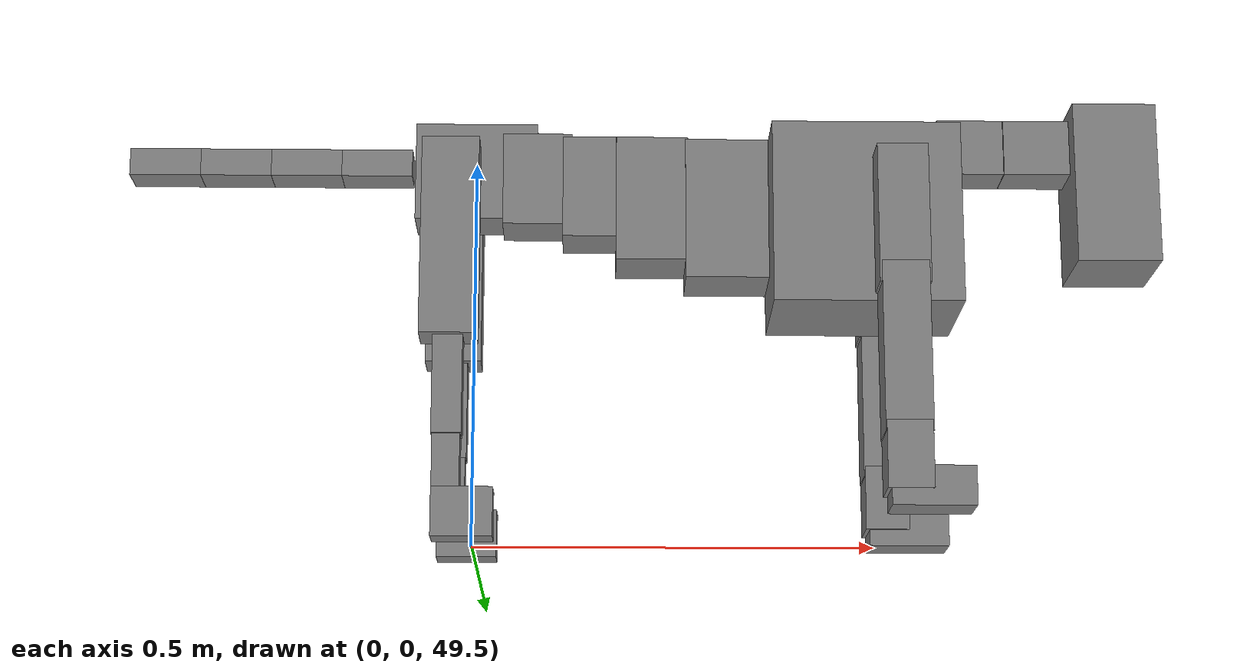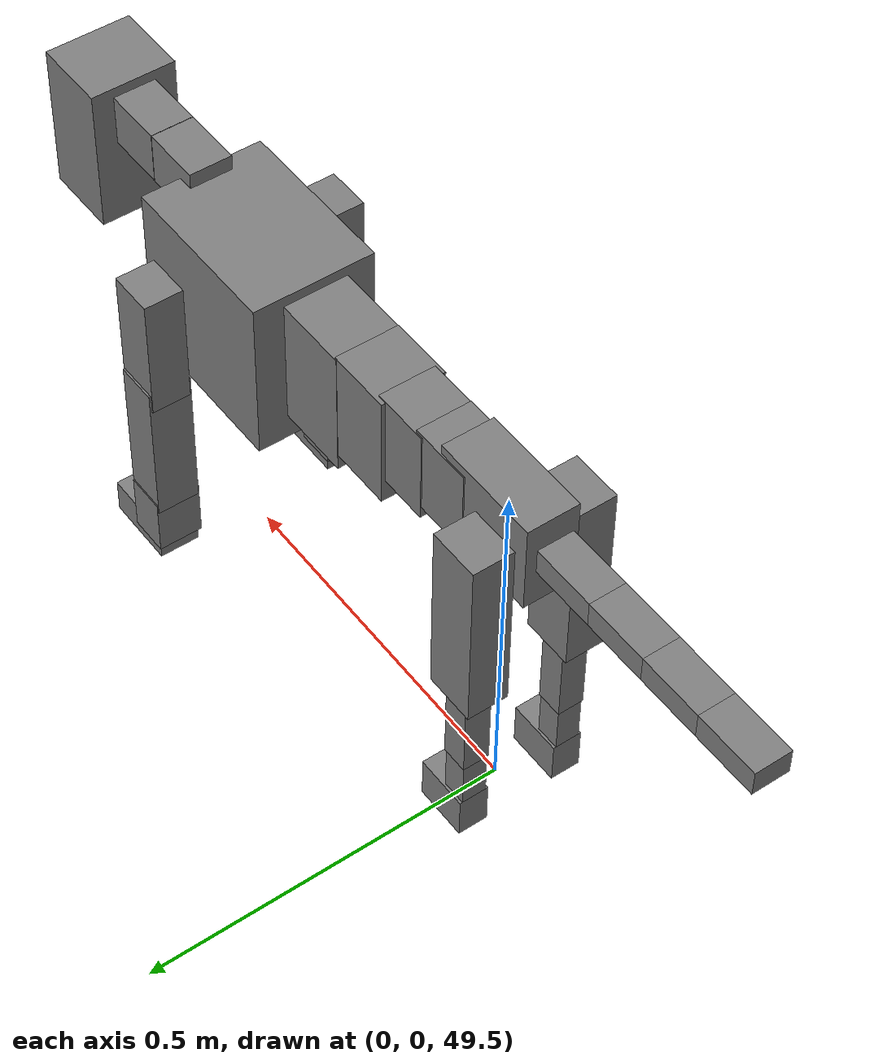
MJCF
<mujoco model="dog">

    <default>
        <joint armature="0.02" stiffness="1" damping="0.2" limited="true"/>
        <geom condim="3" friction="1 0.05 0.05" margin="0.01"/>
        <motor ctrllimited="true" ctrlrange="-1.0 1.0" forcelimited="true" gear="50"/>
    </default>

    <compiler inertiafromgeom="true" angle="radian"/>

    <option timestep="0.016" iterations="50" tolerance="1e-10" solver="Newton" jacobian="dense" cone="pyramidal"/>

    <size nconmax="20000" njmax="60000" nstack="5000000"/>
    <visual>
        <map force="0.1" zfar="30"/>
        <rgba haze="0.15 0.25 0.35 1"/>
        <quality shadowsize="2048"/>
        <global offwidth="800" offheight="800"/>
    </visual>

    <asset>
        <texture type="skybox" builtin="gradient" rgb1="0.3 0.5 0.7" rgb2="0 0 0" width="512" height="512"/>
        <texture name="texplane" type="2d" builtin="checker" rgb1=".2 .3 .4" rgb2=".1 0.15 0.2" width="512" height="512"
                 mark="cross" markrgb=".8 .8 .8"/>
        <texture name="texgeom" type="cube" builtin="flat" mark="cross" width="127" height="1278" rgb1="0.8 0.6 0.4"
                 rgb2="0.8 0.6 0.4" markrgb="1 1 1" random="0.01"/>

        <material name="matplane" reflectance="0.3" texture="texplane" texrepeat="1 1" texuniform="true"/>
        <material name="matgeom" texture="texgeom" texuniform="true" rgba="0.8 0.6 .4 1"/>
    </asset>

    <worldbody>
        <geom name="floor" pos="0 0 0" size="0 0 .25" type="plane" material="matplane" condim="3"/>

        <light directional="false" diffuse=".2 .2 .2" specular="0 0 0" pos="0 0 5" dir="0 0 -1" castshadow="false"/>
        <light mode="targetbodycom" target="torso" directional="false" diffuse=".8 .8 .8" specular="0.3 0.3 0.3"
               pos="0 0 4.0" dir="0 0 -1"/>

        <body name="root" pos="0 0 50">
            <freejoint name="root_1"/>
            <geom type="box" pos="0 0 -0.02" size="0.0774  0.0358  0.063" density="2030"/>

            <body name="spine1" pos="0.054 0 0">
                <joint name="spine1_y" axis="0 1 0" range="0 0.7" limited="true"/>
                <geom type="box" pos="0.02375 0 -0.03" size="0.04375  0.0375  0.05985" density="2030"/>

                <body name="spine2" pos="0.0612 0 0">
                    <joint name="spine2_y" axis="0 1 0" range="-0.15 0.15" limited="true"/>
                    <geom type="box" pos="0.03555  0  -0.04" size="0.04055  0.039  0.06615" density="2030"/>

                    <body name="spine3" pos="0.0730 0 0">
                        <joint name="spine3_y" axis="0 1 0" range="-0.15 0.15" limited="true"/>
                        <geom type="box" pos="0.03555  0  -0.057" size="0.04555  0.0445  0.081" density="2030"/>

                        <body name="spine4" pos="0.0780 0 0">
                            <joint name="spine4_y" axis="0 1 0" range="-0.15 0.15" limited="true"/>
                            <geom type="box" pos="0.05265  0  -0.07" size="0.05265  0.045  0.09135" density="2030"/>

                            <body name="torso" pos="0.1082 0 0">
                                <joint name="torso_y" axis="0 1 0" range="-0.15 0.15" limited="true"/>
                                <geom type="box" pos="0.11925  0  -0.085" size="0.11925  0.085  0.11745"
                                      density="2030"/>

                                <body name="neck1" pos="0.2160  0   0.0180">
                                    <joint name="neck1_y" axis="0 1 0" range="-1.2  -1" limited="true"/>
                                    <geom type="box" pos="0.0423  0  0" size="0.0423  0.03  0.036" density="2325"/>

                                    <body name="neck2" pos="0.0853  0  0">
                                        <joint name="neck2_y" axis="0 1 0" range="0.1  0" limited="true"/>
                                        <geom type="box" pos="0.0423  0  0" size="0.0423  0.03  0.036" density="2325"/>

                                        <body name="head" pos="0.0853  0  0">
                                            <joint name="head_y" axis="0 1 0" range="-0.3  -0.2" limited="true"/>
                                            <geom type="box" pos="0.0531  0  -0.055" size="0.0531  0.06  0.1044"
                                                  density="4030"/>

                                        </body>
                                    </body>
                                </body>

                                <body name="front_shoulder" pos="0.156  0   -0.0480">
                                    <joint name="front_shoulder_y" axis="0 1 0" range="-1 1.5" limited="true"/>
                                    <geom type="box" pos="0 0.13 -0.0623" size="0.0316  0.0270  0.0889" density="1158"/>
                                    <geom type="box" pos="0 -0.13 -0.0623" size="0.0316  0.0270  0.0889"
                                          density="1158"/>

                                    <body name="front_elbow" pos="0  0  -0.1246">
                                        <joint name="front_elbow_y" axis="0 1 0" range="-2 0" limited="true"/>
                                        <geom type="box" pos="0 0.13 -0.1067" size="0.0292  0.0298  0.1067"
                                              density="1081"/>
                                        <geom type="box" pos="0 -0.13 -0.1067" size="0.0292  0.0298  0.1067"
                                              density="1081"/>

                                        <body name="front_wrist" pos="0  0  -0.2135">
                                            <joint name="front_wrist_y" axis="0 1 0" range="-0.2 0" limited="true"/>
                                            <geom type="box" pos="0 0.13 -0.0283" size="0.0280  0.0311  0.0415"
                                                  density="1664"/>
                                            <geom type="box" pos="0 -0.13 -0.0283" size="0.0280  0.0311  0.0415"
                                                  density="1664"/>

                                            <body name="front_finger_end" pos="0  0  -0.0566">
                                                <joint name="front_finger_y" axis="0 1 0" range="-0.4 1"
                                                       limited="true"/>
                                                <geom type="box" pos="0.0279  0.13  -0.0094"
                                                      size="0.0511  0.0279  0.0244" density="1515"/>
                                                <geom type="box" pos="0.0279  -0.13  -0.0094"
                                                      size="0.0511  0.0279  0.0244" density="1515"/>

                                            </body>

                                        </body>
                                    </body>
                                </body>

                            </body>
                        </body>
                    </body>
                </body>
            </body>

            <body name="back_hip" pos="-0.03 0 -0.018">
                <joint name="back_hip_y" axis="0 1 0" range="-1.5 0.3" limited="true"/>
                <geom type="box" pos="0 0.07 -0.1046" size="0.0359  0.0282  0.1274" density="1154"/>
                <geom type="box" pos="0 -0.07 -0.1046" size="0.0359  0.0282  0.1274" density="1154"/>

                <body name="back_knee" pos="0  0  -0.2093">
                    <joint name="back_knee_y" axis="0 1 0" range="0 2.8" limited="true"/>
                    <geom type="box" pos="0 0.07 -0.0658" size="0.0186  0.0183  0.0814" density="1227"/>
                    <geom type="box" pos="0 -0.07 -0.0658" size="0.0186  0.0183  0.0814" density="1227"/>

                    <body name="back_ankle" pos="0  0  -0.1316">
                        <joint name="back_ankle_y" axis="0 1 0" range="-2.2 0" limited="true"/>
                        <geom type="box" pos="0 0.07 -0.0490" size="0.0171  0.0171  0.0603" density="1284"/>
                        <geom type="box" pos="0 -0.07 -0.0490" size="0.0171  0.0171  0.0603" density="1284"/>

                        <body name="back_toe_end" pos="0  0  -0.0980">
                            <joint name="back_toe_y" axis="0 1 0" range="-0.4 1" limited="true"/>
                            <geom type="box" pos="0.0206  0.07  -0.0155" size="0.0378  0.0206  0.0305" density="1515"/>
                            <geom type="box" pos="0.0206  -0.07  -0.0155" size="0.0378  0.0206  0.0305" density="1515"/>

                        </body>
                    </body>
                </body>
            </body>

            <body name="tail1" pos="-0.074 0 -0.006">
                <joint name="tail1_y" axis="0 1 0" range="-0.2 0.2" limited="true"/>
                <geom type="box" pos="-0.0536  0  0" size="0.045  0.025  0.0175" density="1587"/>

                <body name="tail2" pos="-0.09 0 0">
                    <joint name="tail2_y" axis="0 1 0" range="-0.2 0.2" limited="true"/>
                    <geom type="box" pos="-0.0536  0  0" size="0.045  0.025  0.0175" density="1587"/>

                    <body name="tail3" pos="-0.09 0 0">
                        <joint name="tail3_y" axis="0 1 0" range="-0.2 0.2" limited="true"/>
                        <geom type="box" pos="-0.0536  0  0" size="0.045  0.025  0.0175" density="1587"/>

                        <body name="tail4" pos="-0.09 0 0">
                            <joint name="tail4_y" axis="0 1 0" range="-0.2 0.2" limited="true"/>
                            <geom type="box" pos="-0.0536  0  0" size="0.045  0.025  0.0175" density="1587"/>

                        </body>
                    </body>
                </body>
            </body>
        </body>
    </worldbody>

    <actuator>
        <motor joint="spine1_y" forcerange="-150 150     "/>
        <motor joint="spine2_y" forcerange="-150 150     "/>
        <motor joint="spine3_y" forcerange="-150 150     "/>
        <motor joint="spine4_y" forcerange="-150 150     "/>
        <motor joint="torso_y" forcerange="-150 150     "/>
        <motor joint="neck1_y" forcerange="-100 100       "/>
        <motor joint="neck2_y" forcerange="-100 100       "/>
        <motor joint="head_y" forcerange="-150 150       "/>
        <motor joint="front_shoulder_y" forcerange="-148.23 131.96"/>
        <motor joint="front_elbow_y" forcerange="-186.24 130.66"/>
        <motor joint="front_wrist_y" forcerange="-149.54 99.64"/>
        <motor joint="front_finger_y" forcerange="-37.21 71.41"/>
        <motor joint="back_hip_y" forcerange="-211.30 364.24"/>
        <motor joint="back_knee_y" forcerange="-232.35 234.02"/>
        <motor joint="back_angle_y" forcerange="-95.70 78.35"/>
        <motor joint="back_toe_y" forcerange="-30.98 53.87"/>
        <motor joint="tail1_y" forcerange="-50 50     "/>
        <motor joint="tail2_y" forcerange="-50 50     "/>
        <motor joint="tail3_y" forcerange="-50 50     "/>
        <motor joint="tail4_y" forcerange="-50 50     "/>
    </actuator>
</mujoco>
